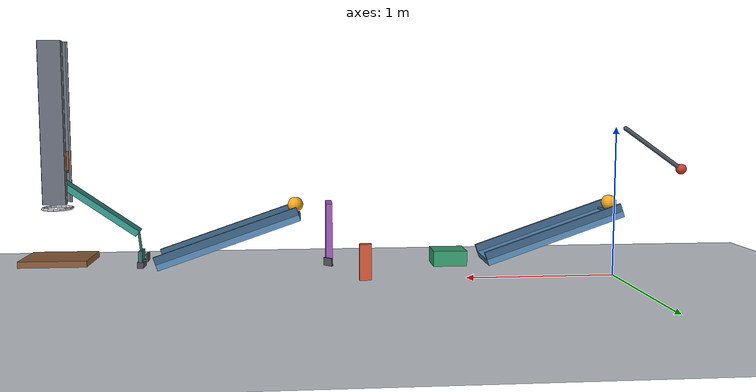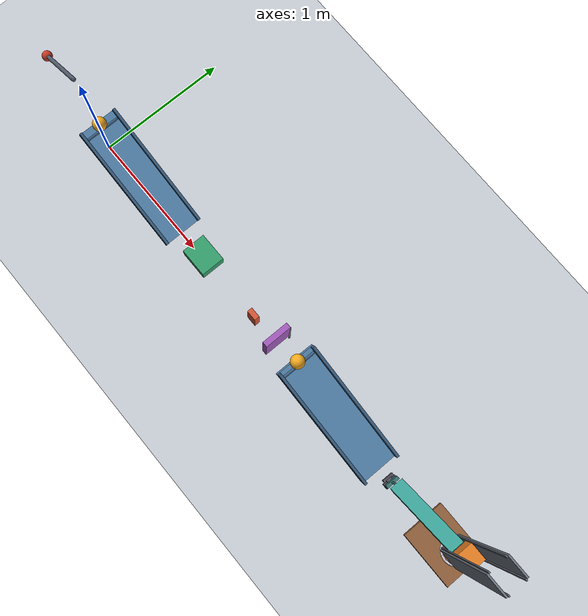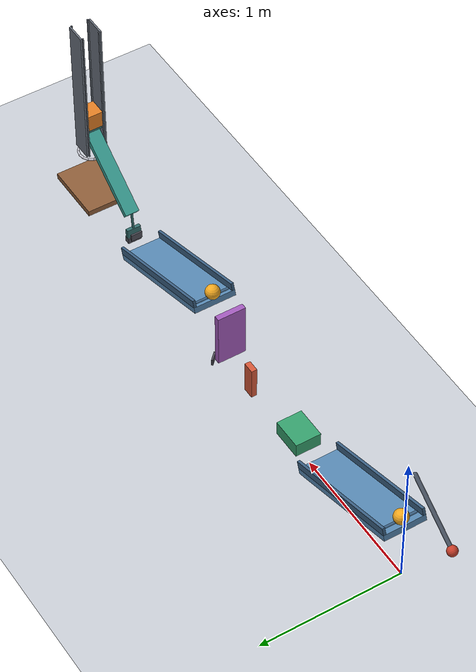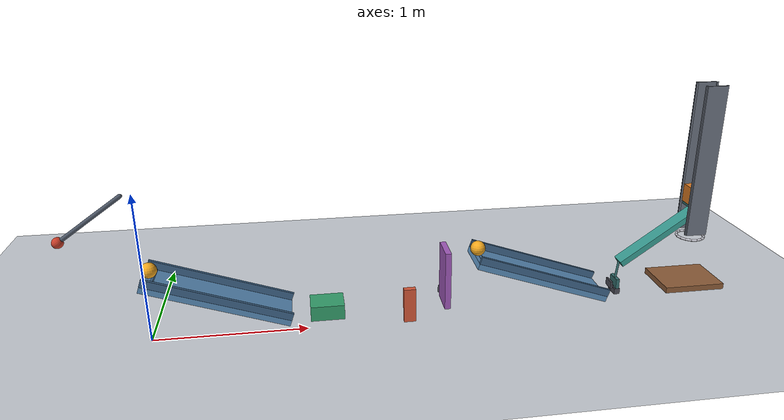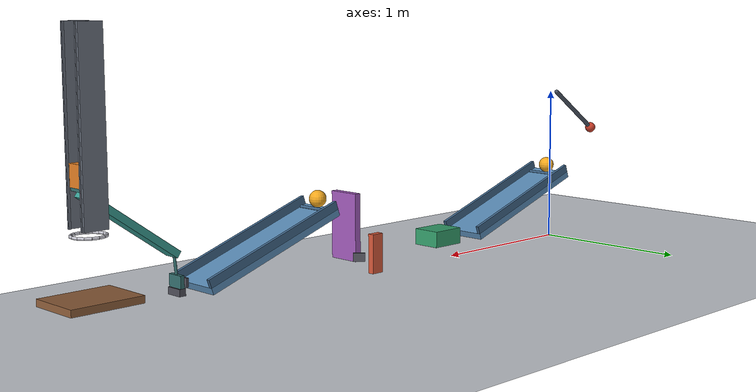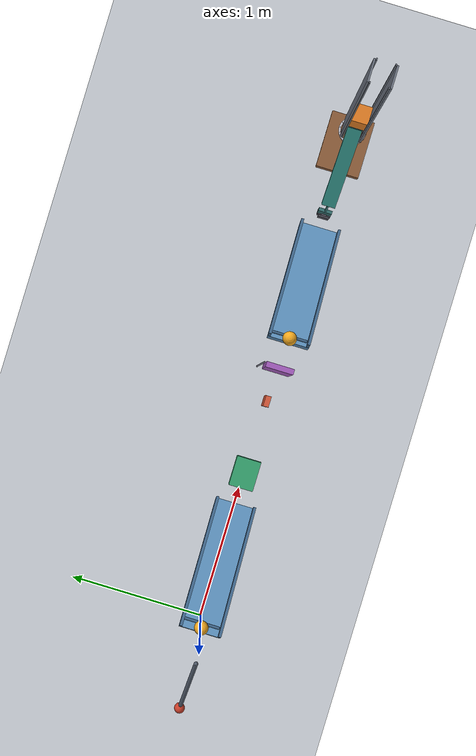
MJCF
<mujoco model="gravity_chain_dimension_restored">
  <compiler angle="degree" autolimits="true"/>
  <option timestep="0.002" gravity="0 0 -9.81" integrator="implicitfast" solver="Newton" iterations="100" cone="elliptic"/>

  <visual>
    <headlight ambient="0.35 0.35 0.35" diffuse="0.65 0.65 0.65" specular="0.15 0.15 0.15"/>
  </visual>

  <worldbody>
    <light name="main_light" pos="1.8 -2 4" dir="0 0.4 -1" directional="true"/>
    <camera name="overview" pos="1.8 -4.5 2.3" xyaxes="1 0 0 0 0.36 0.93"/>

    <geom name="floor" type="plane" size="8 5 0.1" pos="0 0 0" friction="0.68 0.005 0.003" condim="6" solref="0.008 0.6901" rgba="0.78 0.80 0.83 1"/>

    <!-- Initial hinge coordinate is zero; the body frame supplies the release angle. -->
    <body name="pendulum1" pos="-0.035084 0 1.013426" euler="0 55 0">
      <joint name="pendulum1_hinge" type="hinge" axis="0 -1 0" damping="0.04" range="-5 115"/>
      <geom name="pendulum1_rod" type="capsule" fromto="0 0 -0.035 0 0 -0.49" size="0.014" mass="0.08" friction="0.68 0.005 0.003" solref="0.008 0.6901" rgba="0.30 0.34 0.40 1"/>
      <geom name="pendulum1_bob" type="sphere" pos="0 0 -0.515" size="0.035" mass="0.32" friction="0.68 0.005 0.003" solref="0.008 0.6901" rgba="0.78 0.24 0.16 1"/>
    </body>

    <!-- Ramp running surfaces are 0.95 m long, 0.30 m wide, and inclined 19 degrees. -->
    <!-- Both low surface edges are at z=0.15. -->
    <body name="ramp1" pos="0.449121 0 0.304645" euler="0 19 0">
      <geom name="ramp1_surface" type="box" pos="0 0 -0.02" size="0.475 0.15 0.02" friction="0.68 0.005 0.003" solref="0.008 0.6901" rgba="0.35 0.55 0.72 1"/>
      <geom name="ramp1_release_detent" type="capsule" fromto="-0.414 -0.12 0.002 -0.414 0.12 0.002" size="0.01" friction="0.68 0.005 0.003" solref="0.008 0.6901" rgba="0.24 0.39 0.53 1"/>
      <geom name="ramp1_left_rail" type="box" pos="0 0.14 0.025" size="0.475 0.01 0.025" friction="0.68 0.005 0.003" solref="0.008 0.6901" rgba="0.24 0.39 0.53 1"/>
      <geom name="ramp1_right_rail" type="box" pos="0 -0.14 0.025" size="0.475 0.01 0.025" friction="0.68 0.005 0.003" solref="0.008 0.6901" rgba="0.24 0.39 0.53 1"/>
    </body>

    <body name="ball1" pos="0.039916 0 0.498426">
      <freejoint name="ball1_free"/>
      <geom name="ball1_sphere" type="sphere" size="0.05" mass="0.20" friction="0.68 0.005 0.003" condim="6" solref="0.008 0.6901" rgba="0.95 0.66 0.12 1"/>
    </body>

    <!-- Initial ramp-edge-to-cart-face separation is 0.12 m. -->
    <body name="cart1" pos="1.128243 0 0.15">
      <joint name="cart1_slide" type="slide" axis="1 0 0" damping="0.20" range="0 0.40"/>
      <geom name="cart1_box" type="box" size="0.11 0.09 0.05" mass="0.50" friction="0.68 0.005 0.003" solref="0.008 0.6901" rgba="0.20 0.62 0.42 1"/>
    </body>

    <!-- Initial cart-to-domino surface separation is 0.40 m. -->
    <body name="domino1" pos="1.678243 0 0.12">
      <freejoint name="domino1_free"/>
      <geom name="domino1_box" type="box" size="0.04 0.02 0.12" mass="0.25" friction="0.68 0.005 0.003" solref="0.008 0.6901" rgba="0.83 0.34 0.22 1"/>
    </body>

    <!-- Clockwise flap rotation is defined when viewed from above. -->
    <!-- Initial near face is 0.18 m beyond the domino's forward upper edge. -->
    <body name="flap1" pos="1.918243 -0.10 0.32">
      <joint name="flap1_hinge" type="hinge" axis="0 0 -1" damping="0.04" stiffness="0.10" springref="143.239449" range="0 65" solreflimit="0.004 1"/>
      <geom name="flap1_panel" type="box" pos="0 0.10 0" size="0.02 0.10 0.20" mass="0.30" friction="0.68 0.005 0.003" solref="0.008 0.6901" rgba="0.63 0.35 0.73 1"/>
    </body>

    <!-- Passive cam latch intended to release under additional domino contact torque. -->
    <body name="flap_latch" pos="1.918243 -0.10 0.15">
      <joint name="flap_latch_slide" type="slide" axis="0 1 0" damping="0.20" stiffness="1" springref="-0.30" range="0 0.08"/>
      <geom name="flap_latch_cam" type="box" pos="0.008485 0.22 0" euler="0 0 45" size="0.006 0.035 0.025" mass="0.025" friction="0.68 0.005 0.003" solref="0.008 0.6901" rgba="0.30 0.30 0.34 1"/>
    </body>

    <body name="ramp2" pos="2.562364 -0.005 0.304645" euler="0 19 0">
      <geom name="ramp2_surface" type="box" pos="0 0 -0.02" size="0.475 0.15 0.02" friction="0.68 0.005 0.003" solref="0.008 0.6901" rgba="0.35 0.55 0.72 1"/>
      <geom name="ramp2_release_detent" type="capsule" fromto="-0.434 -0.12 0.002 -0.434 0.12 0.002" size="0.01" friction="0.68 0.005 0.003" solref="0.008 0.6901" rgba="0.24 0.39 0.53 1"/>
      <geom name="ramp2_left_rail" type="box" pos="0 0.14 0.025" size="0.475 0.01 0.025" friction="0.68 0.005 0.003" solref="0.008 0.6901" rgba="0.24 0.39 0.53 1"/>
      <geom name="ramp2_right_rail" type="box" pos="0 -0.14 0.025" size="0.475 0.01 0.025" friction="0.68 0.005 0.003" solref="0.008 0.6901" rgba="0.24 0.39 0.53 1"/>
    </body>

    <body name="ball2" pos="2.134249 -0.005 0.504938">
      <freejoint name="ball2_free"/>
      <geom name="ball2_sphere" type="sphere" size="0.05" mass="0.20" friction="0.68 0.005 0.003" condim="6" solref="0.008 0.6901" rgba="0.95 0.66 0.12 1"/>
    </body>

    <!-- Main beam starts inclined 35 degrees and has an additional 40-degree stroke. -->
    <!-- A loading pad and drop arm are rigidly attached; total mass is 0.55 kg. -->
    <body name="seesaw1" pos="3.403485 -0.005 0.52" euler="0 -35 0">
      <joint name="seesaw1_hinge" type="hinge" axis="0 -1 0" damping="0.04" stiffness="0.20" springref="429.718346" range="0 40" solreflimit="0.004 1"/>
      <geom name="seesaw1_beam" type="box" size="0.325 0.05 0.02" mass="0.50" friction="0.68 0.005 0.003" solref="0.008 0.6901" rgba="0.22 0.62 0.58 1"/>
      <geom name="seesaw1_loading_pad" type="box" pos="0.312952 0 0.037231" euler="0 35 0" size="0.06 0.05 0.008" mass="0.02" friction="0.68 0.005 0.003" solref="0.008 0.6901" rgba="0.20 0.43 0.43 1"/>
      <geom name="seesaw1_left_arm" type="capsule" fromto="-0.325 0 0 -0.407171 0 -0.093336" size="0.008" mass="0.02" friction="0.68 0.005 0.003" solref="0.008 0.6901" rgba="0.20 0.43 0.43 1"/>
      <geom name="seesaw1_left_striker" type="box" pos="-0.421511 0 -0.113815" euler="0 35 0" size="0.012 0.05 0.035" mass="0.01" friction="0.68 0.005 0.003" solref="0.008 0.6901" rgba="0.20 0.43 0.43 1"/>
    </body>

    <!-- Ball2 is intended to withdraw this support before contacting the launcher striker. -->
    <body name="seesaw_latch" pos="3.123485 -0.005 0.13">
      <joint name="seesaw_latch_slide" type="slide" axis="1 0 0" damping="0.20" range="0 0.38"/>
      <geom name="seesaw_latch_support" type="box" size="0.02 0.05 0.02" mass="0.025" friction="0.68 0.005 0.003" solref="0.008 0.6901" rgba="0.30 0.30 0.34 1"/>
      <geom name="seesaw_latch_trigger" type="box" pos="-0.04 0 0.045" size="0.006 0.04 0.025" mass="0.01" friction="0.68 0.005 0.003" solref="0.008 0.6901" rgba="0.30 0.30 0.34 1"/>
      <geom name="seesaw_latch_connector" type="box" pos="-0.02 0 0.025" size="0.02 0.02 0.006" mass="0.005" friction="0.68 0.005 0.003" solref="0.008 0.6901" rgba="0.30 0.30 0.34 1"/>
    </body>

    <body name="block1" pos="3.638485 -0.005 0.798">
      <freejoint name="block1_free"/>
      <geom name="block1_cube" type="box" size="0.06 0.06 0.06" mass="0.35" friction="0.68 0.005 0.003" solref="0.008 0.6901" rgba="0.88 0.49 0.14 1"/>
    </body>

    <!-- Guides act near the cube's corners, leaving room for the narrower launch assembly. -->
    <body name="block_guide" pos="3.638485 -0.005 1.04">
      <geom name="block_guide_left_front" type="box" pos="-0.070 -0.058 0" size="0.006 0.004 0.51" friction="0.68 0.005 0.003" solref="0.008 0.6901" rgba="0.42 0.45 0.50 1"/>
      <geom name="block_guide_left_back" type="box" pos="-0.070 0.058 0" size="0.006 0.004 0.51" friction="0.68 0.005 0.003" solref="0.008 0.6901" rgba="0.42 0.45 0.50 1"/>
      <geom name="block_guide_right_front" type="box" pos="0.070 -0.058 0" size="0.006 0.004 0.51" friction="0.68 0.005 0.003" solref="0.008 0.6901" rgba="0.42 0.45 0.50 1"/>
      <geom name="block_guide_right_back" type="box" pos="0.070 0.058 0" size="0.006 0.004 0.51" friction="0.68 0.005 0.003" solref="0.008 0.6901" rgba="0.42 0.45 0.50 1"/>
      <geom name="block_guide_front" type="box" pos="0 -0.070 0" size="0.070 0.006 0.51" friction="0.68 0.005 0.003" solref="0.008 0.6901" rgba="0.42 0.45 0.50 1"/>
      <geom name="block_guide_back" type="box" pos="0 0.070 0" size="0.070 0.006 0.51" friction="0.68 0.005 0.003" solref="0.008 0.6901" rgba="0.42 0.45 0.50 1"/>
    </body>

    <!-- Requested minimum clear diameter restored to approximately 0.16 m. -->
    <!-- This opening does not provide nonpenetrating clearance for the specified cube. -->
    <body name="ring1" pos="3.638485 -0.005 0.498">
      <geom name="ring1_segment_00" type="capsule" fromto="0.089724 0 0 0.082894 0.034337 0" size="0.008" friction="0.68 0.005 0.003" solref="0.008 0.6901" rgba="0.78 0.78 0.82 1"/>
      <geom name="ring1_segment_01" type="capsule" fromto="0.082894 0.034337 0 0.063445 0.063445 0" size="0.008" friction="0.68 0.005 0.003" solref="0.008 0.6901" rgba="0.78 0.78 0.82 1"/>
      <geom name="ring1_segment_02" type="capsule" fromto="0.063445 0.063445 0 0.034337 0.082894 0" size="0.008" friction="0.68 0.005 0.003" solref="0.008 0.6901" rgba="0.78 0.78 0.82 1"/>
      <geom name="ring1_segment_03" type="capsule" fromto="0.034337 0.082894 0 0 0.089724 0" size="0.008" friction="0.68 0.005 0.003" solref="0.008 0.6901" rgba="0.78 0.78 0.82 1"/>
      <geom name="ring1_segment_04" type="capsule" fromto="0 0.089724 0 -0.034337 0.082894 0" size="0.008" friction="0.68 0.005 0.003" solref="0.008 0.6901" rgba="0.78 0.78 0.82 1"/>
      <geom name="ring1_segment_05" type="capsule" fromto="-0.034337 0.082894 0 -0.063445 0.063445 0" size="0.008" friction="0.68 0.005 0.003" solref="0.008 0.6901" rgba="0.78 0.78 0.82 1"/>
      <geom name="ring1_segment_06" type="capsule" fromto="-0.063445 0.063445 0 -0.082894 0.034337 0" size="0.008" friction="0.68 0.005 0.003" solref="0.008 0.6901" rgba="0.78 0.78 0.82 1"/>
      <geom name="ring1_segment_07" type="capsule" fromto="-0.082894 0.034337 0 -0.089724 0 0" size="0.008" friction="0.68 0.005 0.003" solref="0.008 0.6901" rgba="0.78 0.78 0.82 1"/>
      <geom name="ring1_segment_08" type="capsule" fromto="-0.089724 0 0 -0.082894 -0.034337 0" size="0.008" friction="0.68 0.005 0.003" solref="0.008 0.6901" rgba="0.78 0.78 0.82 1"/>
      <geom name="ring1_segment_09" type="capsule" fromto="-0.082894 -0.034337 0 -0.063445 -0.063445 0" size="0.008" friction="0.68 0.005 0.003" solref="0.008 0.6901" rgba="0.78 0.78 0.82 1"/>
      <geom name="ring1_segment_10" type="capsule" fromto="-0.063445 -0.063445 0 -0.034337 -0.082894 0" size="0.008" friction="0.68 0.005 0.003" solref="0.008 0.6901" rgba="0.78 0.78 0.82 1"/>
      <geom name="ring1_segment_11" type="capsule" fromto="-0.034337 -0.082894 0 0 -0.089724 0" size="0.008" friction="0.68 0.005 0.003" solref="0.008 0.6901" rgba="0.78 0.78 0.82 1"/>
      <geom name="ring1_segment_12" type="capsule" fromto="0 -0.089724 0 0.034337 -0.082894 0" size="0.008" friction="0.68 0.005 0.003" solref="0.008 0.6901" rgba="0.78 0.78 0.82 1"/>
      <geom name="ring1_segment_13" type="capsule" fromto="0.034337 -0.082894 0 0.063445 -0.063445 0" size="0.008" friction="0.68 0.005 0.003" solref="0.008 0.6901" rgba="0.78 0.78 0.82 1"/>
      <geom name="ring1_segment_14" type="capsule" fromto="0.063445 -0.063445 0 0.082894 -0.034337 0" size="0.008" friction="0.68 0.005 0.003" solref="0.008 0.6901" rgba="0.78 0.78 0.82 1"/>
      <geom name="ring1_segment_15" type="capsule" fromto="0.082894 -0.034337 0 0.089724 0 0" size="0.008" friction="0.68 0.005 0.003" solref="0.008 0.6901" rgba="0.78 0.78 0.82 1"/>
    </body>

    <!-- Upright cube first contact would occur at center z=0.248, 0.25 m below ring center. -->
    <body name="door1" pos="3.848485 -0.005 0.168">
      <joint name="door1_hinge" type="hinge" axis="0 -1 0" damping="0.04" stiffness="1.2" springref="-57.295780" range="0 75"/>
      <geom name="door1_panel" type="box" pos="-0.21 0 0" size="0.21 0.16 0.02" mass="0.45" friction="0.68 0.005 0.003" solref="0.008 0.6901" rgba="0.55 0.36 0.22 1"/>
    </body>
  </worldbody>

  <!-- Model reference positions are used; all initial generalized velocities are zero. -->
  <keyframe>
    <key name="start"/>
  </keyframe>
</mujoco>
